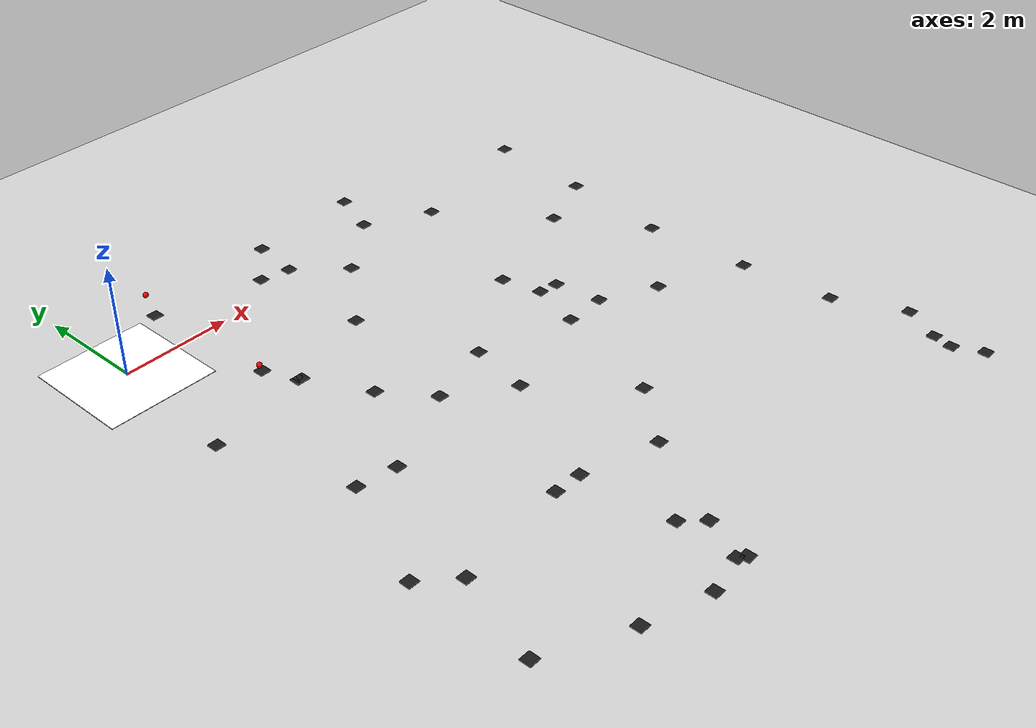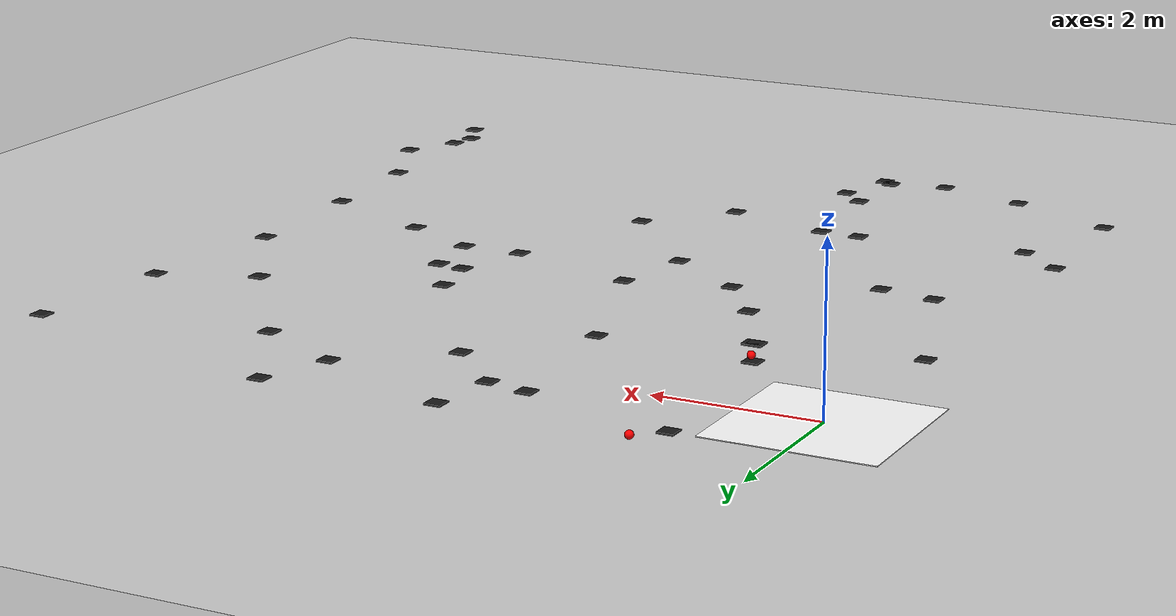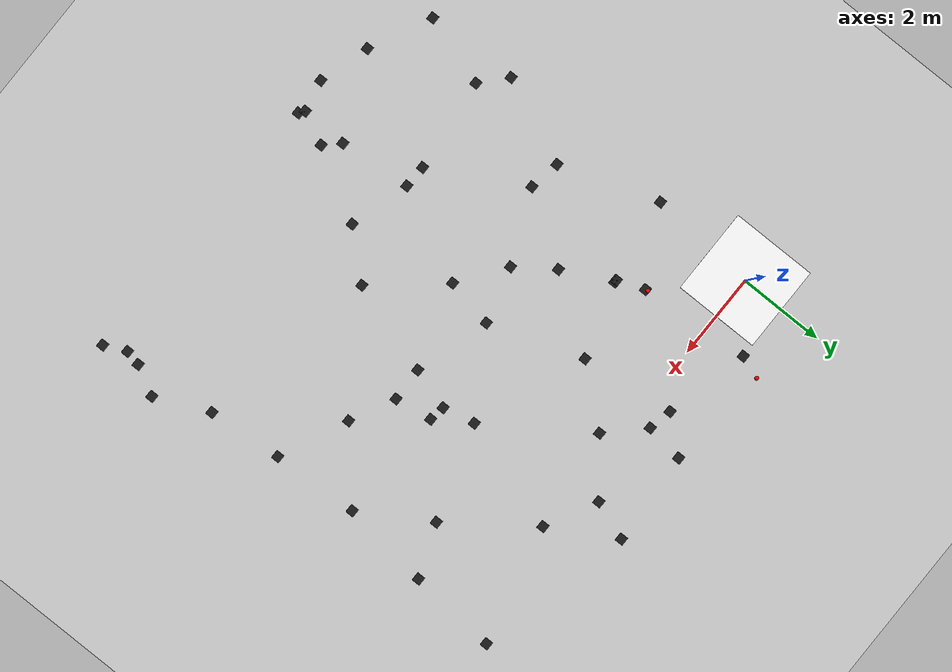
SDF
<sdf version="1.9">
 <world name="landing_world">
  <model name="ground_plane">
   <static>true</static>
   <link name="link">
    <collision name="collision">
     <geometry><plane><normal>0 0 1</normal><size>100 100</size></plane></geometry>
    </collision>
    <visual name="visual">
     <geometry><plane><normal>0 0 1</normal><size>100 100</size></plane></geometry>
     <material>
      <ambient>0.8 0.8 0.8 1</ambient>
      <diffuse>0.8 0.8 0.8 1</diffuse>
      <specular>0.1 0.1 0.1 1</specular>
      <pbr><metal><albedo_map>model://apriltag_pad/materials/textures/checkerboard.png</albedo_map></metal></pbr>
     </material>
    </visual>
   </link>
  </model>
  <include><uri>model://lora_anchor</uri><name>lora_anchor_0</name><pose>1.5 1.5 0.1 0 0 0</pose></include>
  <include><uri>model://lora_anchor</uri><name>lora_anchor_1</name><pose>1.5 -1.5 0.1 0 0 0</pose></include>
  <include><name>apriltag_pad</name><uri>model://apriltag_pad</uri><pose>0 0 0.005 0 0 0</pose></include>
  <model name="feature_box_1">
   <pose>6.064126727710061 -2.626235978707725 0.01 0 0 0</pose>
   <static>true</static>
   <link name="link">
    <visual name="visual">
     <geometry><box><size>0.2 0.2 0.02</size></box></geometry>
     <material><ambient>0.1 0.1 0.1 1</ambient><diffuse>0.1 0.1 0.1 1</diffuse></material>
    </visual>
   </link>
  </model>
  <model name="feature_box_4">
   <pose>9.770568118033758 -9.932839091898458 0.01 0 0 0</pose>
   <static>true</static>
   <link name="link">
    <visual name="visual">
     <geometry><box><size>0.2 0.2 0.02</size></box></geometry>
     <material><ambient>0.1 0.1 0.1 1</ambient><diffuse>0.1 0.1 0.1 1</diffuse></material>
    </visual>
   </link>
  </model>
  <model name="feature_box_16">
   <pose>9.282605964626097 -5.481513865361967 0.01 0 0 0</pose>
   <static>true</static>
   <link name="link">
    <visual name="visual">
     <geometry><box><size>0.2 0.2 0.02</size></box></geometry>
     <material><ambient>0.1 0.1 0.1 1</ambient><diffuse>0.1 0.1 0.1 1</diffuse></material>
    </visual>
   </link>
  </model>
  <model name="feature_box_18">
   <pose>3.4556407277400396 -8.961775679064194 0.01 0 0 0</pose>
   <static>true</static>
   <link name="link">
    <visual name="visual">
     <geometry><box><size>0.2 0.2 0.02</size></box></geometry>
     <material><ambient>0.1 0.1 0.1 1</ambient><diffuse>0.1 0.1 0.1 1</diffuse></material>
    </visual>
   </link>
  </model>
  <model name="feature_box_21">
   <pose>9.18744211042512 -3.4985291819596647 0.01 0 0 0</pose>
   <static>true</static>
   <link name="link">
    <visual name="visual">
     <geometry><box><size>0.2 0.2 0.02</size></box></geometry>
     <material><ambient>0.1 0.1 0.1 1</ambient><diffuse>0.1 0.1 0.1 1</diffuse></material>
    </visual>
   </link>
  </model>
  <model name="feature_box_27">
   <pose>2.3409865623026 -3.289659595853558 0.01 0 0 0</pose>
   <static>true</static>
   <link name="link">
    <visual name="visual">
     <geometry><box><size>0.2 0.2 0.02</size></box></geometry>
     <material><ambient>0.1 0.1 0.1 1</ambient><diffuse>0.1 0.1 0.1 1</diffuse></material>
    </visual>
   </link>
  </model>
  <model name="feature_box_29">
   <pose>8.242039872917047 -1.9275299290043257 0.01 0 0 0</pose>
   <static>true</static>
   <link name="link">
    <visual name="visual">
     <geometry><box><size>0.2 0.2 0.02</size></box></geometry>
     <material><ambient>0.1 0.1 0.1 1</ambient><diffuse>0.1 0.1 0.1 1</diffuse></material>
    </visual>
   </link>
  </model>
  <model name="feature_box_32">
   <pose>4.214478121073725 -3.7805069073277187 0.01 0 0 0</pose>
   <static>true</static>
   <link name="link">
    <visual name="visual">
     <geometry><box><size>0.2 0.2 0.02</size></box></geometry>
     <material><ambient>0.1 0.1 0.1 1</ambient><diffuse>0.1 0.1 0.1 1</diffuse></material>
    </visual>
   </link>
  </model>
  <model name="feature_box_42">
   <pose>3.7648382686285444 0.3971200652457867 0.01 0 0 0</pose>
   <static>true</static>
   <link name="link">
    <visual name="visual">
     <geometry><box><size>0.2 0.2 0.02</size></box></geometry>
     <material><ambient>0.1 0.1 0.1 1</ambient><diffuse>0.1 0.1 0.1 1</diffuse></material>
    </visual>
   </link>
  </model>
  <model name="feature_box_48">
   <pose>6.587484761806252 -3.413515060821637 0.01 0 0 0</pose>
   <static>true</static>
   <link name="link">
    <visual name="visual">
     <geometry><box><size>0.2 0.2 0.02</size></box></geometry>
     <material><ambient>0.1 0.1 0.1 1</ambient><diffuse>0.1 0.1 0.1 1</diffuse></material>
    </visual>
   </link>
  </model>
  <model name="feature_box_56">
   <pose>-0.1699671239294922 -2.483087863056994 0.01 0 0 0</pose>
   <static>true</static>
   <link name="link">
    <visual name="visual">
     <geometry><box><size>0.2 0.2 0.02</size></box></geometry>
     <material><ambient>0.1 0.1 0.1 1</ambient><diffuse>0.1 0.1 0.1 1</diffuse></material>
    </visual>
   </link>
  </model>
  <model name="feature_box_59">
   <pose>9.609454935898434 0.5563756015819248 0.01 0 0 0</pose>
   <static>true</static>
   <link name="link">
    <visual name="visual">
     <geometry><box><size>0.2 0.2 0.02</size></box></geometry>
     <material><ambient>0.1 0.1 0.1 1</ambient><diffuse>0.1 0.1 0.1 1</diffuse></material>
    </visual>
   </link>
  </model>
  <model name="feature_box_61">
   <pose>1.5048151518458184 -1.5531711853770531 0.01 0 0 0</pose>
   <static>true</static>
   <link name="link">
    <visual name="visual">
     <geometry><box><size>0.2 0.2 0.02</size></box></geometry>
     <material><ambient>0.1 0.1 0.1 1</ambient><diffuse>0.1 0.1 0.1 1</diffuse></material>
    </visual>
   </link>
  </model>
  <model name="feature_box_67">
   <pose>-0.19282635161419037 -8.801551305537082 0.01 0 0 0</pose>
   <static>true</static>
   <link name="link">
    <visual name="visual">
     <geometry><box><size>0.2 0.2 0.02</size></box></geometry>
     <material><ambient>0.1 0.1 0.1 1</ambient><diffuse>0.1 0.1 0.1 1</diffuse></material>
    </visual>
   </link>
  </model>
  <model name="feature_box_73">
   <pose>2.984058012711106 -6.9678447055918795 0.01 0 0 0</pose>
   <static>true</static>
   <link name="link">
    <visual name="visual">
     <geometry><box><size>0.2 0.2 0.02</size></box></geometry>
     <material><ambient>0.1 0.1 0.1 1</ambient><diffuse>0.1 0.1 0.1 1</diffuse></material>
    </visual>
   </link>
  </model>
  <model name="feature_box_77">
   <pose>2.3722537458844286 -9.840938349179737 0.01 0 0 0</pose>
   <static>true</static>
   <link name="link">
    <visual name="visual">
     <geometry><box><size>0.2 0.2 0.02</size></box></geometry>
     <material><ambient>0.1 0.1 0.1 1</ambient><diffuse>0.1 0.1 0.1 1</diffuse></material>
    </visual>
   </link>
  </model>
  <model name="feature_box_84">
   <pose>-0.2484281920590945 -6.679318797436597 0.01 0 0 0</pose>
   <static>true</static>
   <link name="link">
    <visual name="visual">
     <geometry><box><size>0.2 0.2 0.02</size></box></geometry>
     <material><ambient>0.1 0.1 0.1 1</ambient><diffuse>0.1 0.1 0.1 1</diffuse></material>
    </visual>
   </link>
  </model>
  <model name="feature_box_86">
   <pose>5.701876252006276 0.5289654910223263 0.01 0 0 0</pose>
   <static>true</static>
   <link name="link">
    <visual name="visual">
     <geometry><box><size>0.2 0.2 0.02</size></box></geometry>
     <material><ambient>0.1 0.1 0.1 1</ambient><diffuse>0.1 0.1 0.1 1</diffuse></material>
    </visual>
   </link>
  </model>
  <model name="feature_box_94">
   <pose>4.3646386098028085 -7.370816275899495 0.01 0 0 0</pose>
   <static>true</static>
   <link name="link">
    <visual name="visual">
     <geometry><box><size>0.2 0.2 0.02</size></box></geometry>
     <material><ambient>0.1 0.1 0.1 1</ambient><diffuse>0.1 0.1 0.1 1</diffuse></material>
    </visual>
   </link>
  </model>
  <model name="feature_box_95">
   <pose>9.438310888267893 -1.460821576930666 0.01 0 0 0</pose>
   <static>true</static>
   <link name="link">
    <visual name="visual">
     <geometry><box><size>0.2 0.2 0.02</size></box></geometry>
     <material><ambient>0.1 0.1 0.1 1</ambient><diffuse>0.1 0.1 0.1 1</diffuse></material>
    </visual>
   </link>
  </model>
  <model name="feature_box_100">
   <pose>6.874755345130389 -0.07562361492452396 0.01 0 0 0</pose>
   <static>true</static>
   <link name="link">
    <visual name="visual">
     <geometry><box><size>0.2 0.2 0.02</size></box></geometry>
     <material><ambient>0.1 0.1 0.1 1</ambient><diffuse>0.1 0.1 0.1 1</diffuse></material>
    </visual>
   </link>
  </model>
  <model name="feature_box_105">
   <pose>3.2226052081144037 0.5089127132642997 0.01 0 0 0</pose>
   <static>true</static>
   <link name="link">
    <visual name="visual">
     <geometry><box><size>0.2 0.2 0.02</size></box></geometry>
     <material><ambient>0.1 0.1 0.1 1</ambient><diffuse>0.1 0.1 0.1 1</diffuse></material>
    </visual>
   </link>
  </model>
  <model name="feature_box_108">
   <pose>9.428077595188963 -7.184857674474559 0.01 0 0 0</pose>
   <static>true</static>
   <link name="link">
    <visual name="visual">
     <geometry><box><size>0.2 0.2 0.02</size></box></geometry>
     <material><ambient>0.1 0.1 0.1 1</ambient><diffuse>0.1 0.1 0.1 1</diffuse></material>
    </visual>
   </link>
  </model>
  <model name="feature_box_111">
   <pose>4.000084219549741 -4.884684712822311 0.01 0 0 0</pose>
   <static>true</static>
   <link name="link">
    <visual name="visual">
     <geometry><box><size>0.2 0.2 0.02</size></box></geometry>
     <material><ambient>0.1 0.1 0.1 1</ambient><diffuse>0.1 0.1 0.1 1</diffuse></material>
    </visual>
   </link>
  </model>
  <model name="feature_box_112">
   <pose>3.4839881604154144 -1.6350232680948888 0.01 0 0 0</pose>
   <static>true</static>
   <link name="link">
    <visual name="visual">
     <geometry><box><size>0.2 0.2 0.02</size></box></geometry>
     <material><ambient>0.1 0.1 0.1 1</ambient><diffuse>0.1 0.1 0.1 1</diffuse></material>
    </visual>
   </link>
  </model>
  <model name="feature_box_119">
   <pose>1.7403590214560154 -2.1692977946435166 0.01 0 0 0</pose>
   <static>true</static>
   <link name="link">
    <visual name="visual">
     <geometry><box><size>0.2 0.2 0.02</size></box></geometry>
     <material><ambient>0.1 0.1 0.1 1</ambient><diffuse>0.1 0.1 0.1 1</diffuse></material>
    </visual>
   </link>
  </model>
  <model name="feature_box_125">
   <pose>3.099655464103723 -9.685005515277702 0.01 0 0 0</pose>
   <static>true</static>
   <link name="link">
    <visual name="visual">
     <geometry><box><size>0.2 0.2 0.02</size></box></geometry>
     <material><ambient>0.1 0.1 0.1 1</ambient><diffuse>0.1 0.1 0.1 1</diffuse></material>
    </visual>
   </link>
  </model>
  <model name="feature_box_128">
   <pose>3.8884367134190185 1.2805338644328508 0.01 0 0 0</pose>
   <static>true</static>
   <link name="link">
    <visual name="visual">
     <geometry><box><size>0.2 0.2 0.02</size></box></geometry>
     <material><ambient>0.1 0.1 0.1 1</ambient><diffuse>0.1 0.1 0.1 1</diffuse></material>
    </visual>
   </link>
  </model>
  <model name="feature_box_131">
   <pose>5.263734038840404 -6.38135515344983 0.01 0 0 0</pose>
   <static>true</static>
   <link name="link">
    <visual name="visual">
     <geometry><box><size>0.2 0.2 0.02</size></box></geometry>
     <material><ambient>0.1 0.1 0.1 1</ambient><diffuse>0.1 0.1 0.1 1</diffuse></material>
    </visual>
   </link>
  </model>
  <model name="feature_box_135">
   <pose>9.61666544987628 -9.075051222404118 0.01 0 0 0</pose>
   <static>true</static>
   <link name="link">
    <visual name="visual">
     <geometry><box><size>0.2 0.2 0.02</size></box></geometry>
     <material><ambient>0.1 0.1 0.1 1</ambient><diffuse>0.1 0.1 0.1 1</diffuse></material>
    </visual>
   </link>
  </model>
  <model name="feature_box_144">
   <pose>9.971552951419017 -8.41248964505307 0.01 0 0 0</pose>
   <static>true</static>
   <link name="link">
    <visual name="visual">
     <geometry><box><size>0.2 0.2 0.02</size></box></geometry>
     <material><ambient>0.1 0.1 0.1 1</ambient><diffuse>0.1 0.1 0.1 1</diffuse></material>
    </visual>
   </link>
  </model>
  <model name="feature_box_146">
   <pose>9.543417509222142 -9.428552595115182 0.01 0 0 0</pose>
   <static>true</static>
   <link name="link">
    <visual name="visual">
     <geometry><box><size>0.2 0.2 0.02</size></box></geometry>
     <material><ambient>0.1 0.1 0.1 1</ambient><diffuse>0.1 0.1 0.1 1</diffuse></material>
    </visual>
   </link>
  </model>
  <model name="feature_box_150">
   <pose>3.2217974588543186 -9.779602280346092 0.01 0 0 0</pose>
   <static>true</static>
   <link name="link">
    <visual name="visual">
     <geometry><box><size>0.2 0.2 0.02</size></box></geometry>
     <material><ambient>0.1 0.1 0.1 1</ambient><diffuse>0.1 0.1 0.1 1</diffuse></material>
    </visual>
   </link>
  </model>
  <model name="feature_box_155">
   <pose>7.723049503162585 -4.772153197627979 0.01 0 0 0</pose>
   <static>true</static>
   <link name="link">
    <visual name="visual">
     <geometry><box><size>0.2 0.2 0.02</size></box></geometry>
     <material><ambient>0.1 0.1 0.1 1</ambient><diffuse>0.1 0.1 0.1 1</diffuse></material>
    </visual>
   </link>
  </model>
  <model name="feature_box_156">
   <pose>0.32295686216630415 -7.195243380931274 0.01 0 0 0</pose>
   <static>true</static>
   <link name="link">
    <visual name="visual">
     <geometry><box><size>0.2 0.2 0.02</size></box></geometry>
     <material><ambient>0.1 0.1 0.1 1</ambient><diffuse>0.1 0.1 0.1 1</diffuse></material>
    </visual>
   </link>
  </model>
  <model name="feature_box_157">
   <pose>5.9326058018795464 -4.296372234989525 0.01 0 0 0</pose>
   <static>true</static>
   <link name="link">
    <visual name="visual">
     <geometry><box><size>0.2 0.2 0.02</size></box></geometry>
     <material><ambient>0.1 0.1 0.1 1</ambient><diffuse>0.1 0.1 0.1 1</diffuse></material>
    </visual>
   </link>
  </model>
  <model name="feature_box_158">
   <pose>6.224861569441657 -3.3603583581094076 0.01 0 0 0</pose>
   <static>true</static>
   <link name="link">
    <visual name="visual">
     <geometry><box><size>0.2 0.2 0.02</size></box></geometry>
     <material><ambient>0.1 0.1 0.1 1</ambient><diffuse>0.1 0.1 0.1 1</diffuse></material>
    </visual>
   </link>
  </model>
  <model name="feature_box_160">
   <pose>6.025841053169479 1.4134767226247789 0.01 0 0 0</pose>
   <static>true</static>
   <link name="link">
    <visual name="visual">
     <geometry><box><size>0.2 0.2 0.02</size></box></geometry>
     <material><ambient>0.1 0.1 0.1 1</ambient><diffuse>0.1 0.1 0.1 1</diffuse></material>
    </visual>
   </link>
  </model>
  <model name="feature_box_165">
   <pose>6.711875775989235 -4.270790520694341 0.01 0 0 0</pose>
   <static>true</static>
   <link name="link">
    <visual name="visual">
     <geometry><box><size>0.2 0.2 0.02</size></box></geometry>
     <material><ambient>0.1 0.1 0.1 1</ambient><diffuse>0.1 0.1 0.1 1</diffuse></material>
    </visual>
   </link>
  </model>
  <model name="feature_box_167">
   <pose>2.944153273259948 -4.130317202489156 0.01 0 0 0</pose>
   <static>true</static>
   <link name="link">
    <visual name="visual">
     <geometry><box><size>0.2 0.2 0.02</size></box></geometry>
     <material><ambient>0.1 0.1 0.1 1</ambient><diffuse>0.1 0.1 0.1 1</diffuse></material>
    </visual>
   </link>
  </model>
  <model name="feature_box_169">
   <pose>0.5931599304778441 -4.73268374614058 0.01 0 0 0</pose>
   <static>true</static>
   <link name="link">
    <visual name="visual">
     <geometry><box><size>0.2 0.2 0.02</size></box></geometry>
     <material><ambient>0.1 0.1 0.1 1</ambient><diffuse>0.1 0.1 0.1 1</diffuse></material>
    </visual>
   </link>
  </model>
  <model name="feature_box_173">
   <pose>2.4614619889858176 -6.952721219437783 0.01 0 0 0</pose>
   <static>true</static>
   <link name="link">
    <visual name="visual">
     <geometry><box><size>0.2 0.2 0.02</size></box></geometry>
     <material><ambient>0.1 0.1 0.1 1</ambient><diffuse>0.1 0.1 0.1 1</diffuse></material>
    </visual>
   </link>
  </model>
  <model name="feature_box_174">
   <pose>1.3022523629505773 0.9919859139568281 0.01 0 0 0</pose>
   <static>true</static>
   <link name="link">
    <visual name="visual">
     <geometry><box><size>0.2 0.2 0.02</size></box></geometry>
     <material><ambient>0.1 0.1 0.1 1</ambient><diffuse>0.1 0.1 0.1 1</diffuse></material>
    </visual>
   </link>
  </model>
  <model name="feature_box_179">
   <pose>3.1315335447993284 -8.620702892621079 0.01 0 0 0</pose>
   <static>true</static>
   <link name="link">
    <visual name="visual">
     <geometry><box><size>0.2 0.2 0.02</size></box></geometry>
     <material><ambient>0.1 0.1 0.1 1</ambient><diffuse>0.1 0.1 0.1 1</diffuse></material>
    </visual>
   </link>
  </model>
  <model name="feature_box_184">
   <pose>1.7900393848195133 -2.1714993834999508 0.01 0 0 0</pose>
   <static>true</static>
   <link name="link">
    <visual name="visual">
     <geometry><box><size>0.2 0.2 0.02</size></box></geometry>
     <material><ambient>0.1 0.1 0.1 1</ambient><diffuse>0.1 0.1 0.1 1</diffuse></material>
    </visual>
   </link>
  </model>
  <model name="feature_box_187">
   <pose>4.540850878564047 -0.3852713660592677 0.01 0 0 0</pose>
   <static>true</static>
   <link name="link">
    <visual name="visual">
     <geometry><box><size>0.2 0.2 0.02</size></box></geometry>
     <material><ambient>0.1 0.1 0.1 1</ambient><diffuse>0.1 0.1 0.1 1</diffuse></material>
    </visual>
   </link>
  </model>
  <model name="feature_box_196">
   <pose>1.2074635312245867 -9.486973215181218 0.01 0 0 0</pose>
   <static>true</static>
   <link name="link">
    <visual name="visual">
     <geometry><box><size>0.2 0.2 0.02</size></box></geometry>
     <material><ambient>0.1 0.1 0.1 1</ambient><diffuse>0.1 0.1 0.1 1</diffuse></material>
    </visual>
   </link>
  </model>
  <model name="feature_box_199">
   <pose>1.3088325929163673 -4.85208856554781 0.01 0 0 0</pose>
   <static>true</static>
   <link name="link">
    <visual name="visual">
     <geometry><box><size>0.2 0.2 0.02</size></box></geometry>
     <material><ambient>0.1 0.1 0.1 1</ambient><diffuse>0.1 0.1 0.1 1</diffuse></material>
    </visual>
   </link>
  </model>
 </world>
</sdf>
